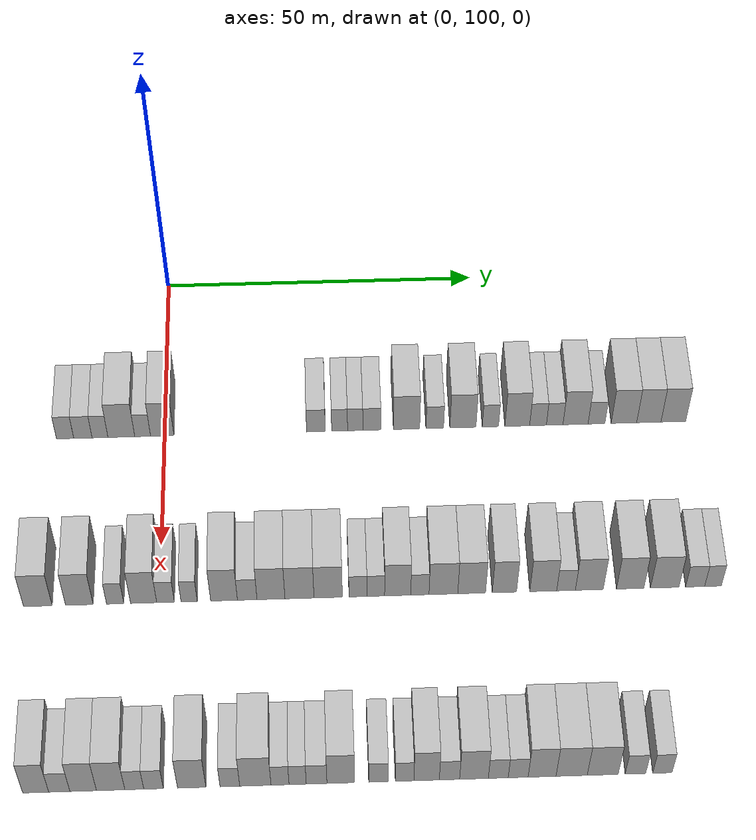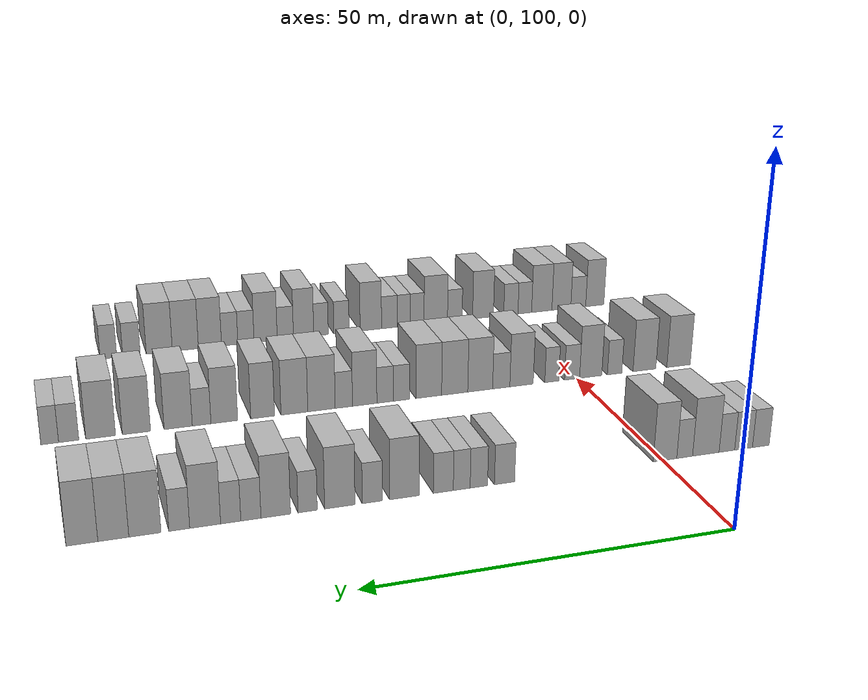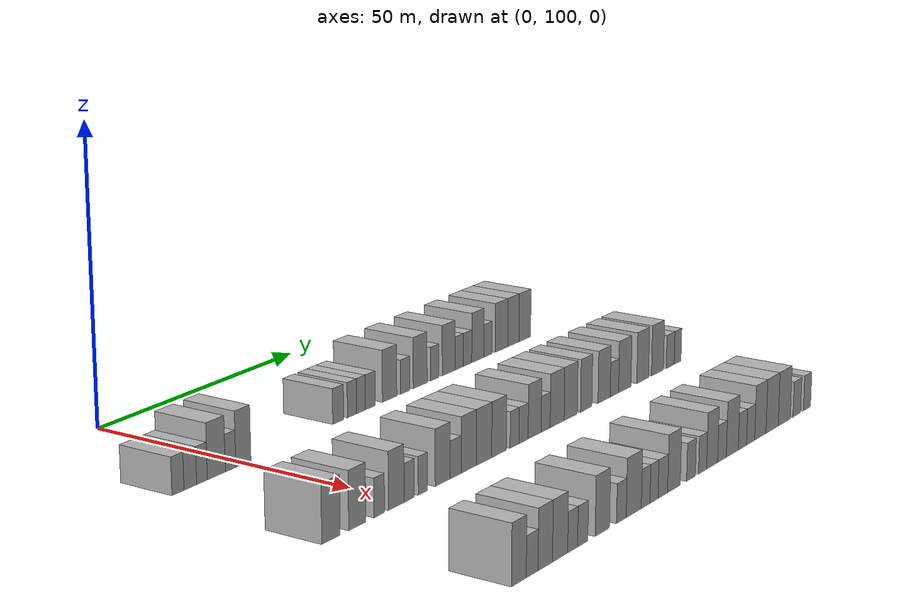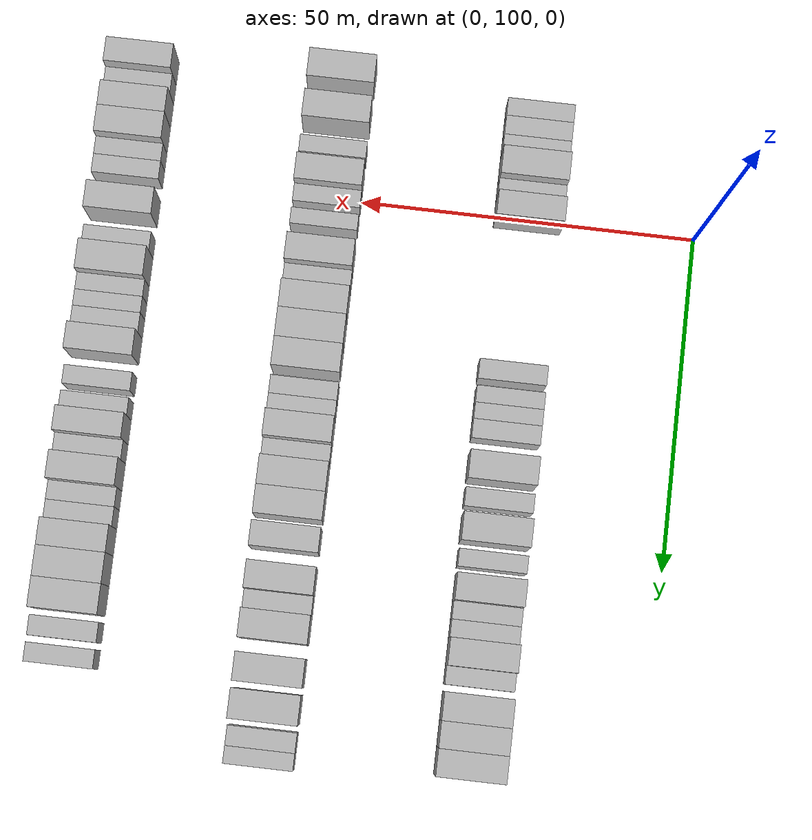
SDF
<sdf version="1.6">
 <world name="default">
  <model name="building_95">
   <static>1</static>
   <pose>25.0000 84.3382 0 0.000000 0.000000 0.000000</pose>
   <link name="link">
    <pose>0 0 3.00 0 0 0</pose>
    <collision name="collision"><geometry><box><size>10.0000 2.7156 6.0000</size></box></geometry></collision>
    <visual name="visual">
     <cast_shadows>0</cast_shadows>
     <geometry><box><size>10.0000 2.7156 6.0000</size></box></geometry>
     <material>
      <script>
       <uri>model://HANNAS_wall/materials/scripts</uri>
       <uri>model://HANNAS_wall/materials/textures</uri>
       <name>vrc/HANNAS_wall</name>
      </script>
     </material>
    </visual>
   </link>
  </model>
  <model name="building_96">
   <static>1</static>
   <pose>25.0000 87.1358 0 0.000000 0.000000 0.000000</pose>
   <link name="link">
    <pose>0 0 3.00 0 0 0</pose>
    <collision name="collision"><geometry><box><size>10.0000 2.8794 6.0000</size></box></geometry></collision>
    <visual name="visual">
     <cast_shadows>0</cast_shadows>
     <geometry><box><size>10.0000 2.8794 6.0000</size></box></geometry>
     <material>
      <script>
       <uri>model://HANNAS_wall/materials/scripts</uri>
       <uri>model://HANNAS_wall/materials/textures</uri>
       <name>vrc/HANNAS_wall</name>
      </script>
     </material>
    </visual>
   </link>
  </model>
  <model name="building_97">
   <static>1</static>
   <pose>25.0000 89.8253 0 0.000000 0.000000 0.000000</pose>
   <link name="link">
    <pose>0 0 3.00 0 0 0</pose>
    <collision name="collision"><geometry><box><size>10.0000 2.4997 6.0000</size></box></geometry></collision>
    <visual name="visual">
     <cast_shadows>0</cast_shadows>
     <geometry><box><size>10.0000 2.4997 6.0000</size></box></geometry>
     <material>
      <script>
       <uri>model://HANNAS_wall/materials/scripts</uri>
       <uri>model://HANNAS_wall/materials/textures</uri>
       <name>vrc/HANNAS_wall</name>
      </script>
     </material>
    </visual>
   </link>
  </model>
  <model name="building_98">
   <static>1</static>
   <pose>25.0000 93.1867 0 0.000000 0.000000 0.000000</pose>
   <link name="link">
    <pose>0 0 4.50 0 0 0</pose>
    <collision name="collision"><geometry><box><size>10.0000 4.2230 9.0000</size></box></geometry></collision>
    <visual name="visual">
     <cast_shadows>0</cast_shadows>
     <geometry><box><size>10.0000 4.2230 9.0000</size></box></geometry>
     <material>
      <script>
       <uri>model://HANNAS_wall/materials/scripts</uri>
       <uri>model://HANNAS_wall/materials/textures</uri>
       <name>vrc/HANNAS_wall</name>
      </script>
     </material>
    </visual>
   </link>
  </model>
  <model name="building_99">
   <static>1</static>
   <pose>25.0000 96.5442 0 0.000000 0.000000 0.000000</pose>
   <link name="link">
    <pose>0 0 3.00 0 0 0</pose>
    <collision name="collision"><geometry><box><size>10.0000 2.4920 6.0000</size></box></geometry></collision>
    <visual name="visual">
     <cast_shadows>0</cast_shadows>
     <geometry><box><size>10.0000 2.4920 6.0000</size></box></geometry>
     <material>
      <script>
       <uri>model://HANNAS_wall/materials/scripts</uri>
       <uri>model://HANNAS_wall/materials/textures</uri>
       <name>vrc/HANNAS_wall</name>
      </script>
     </material>
    </visual>
   </link>
  </model>
  <model name="building_100">
   <static>1</static>
   <pose>25.0000 99.6324 0 0.000000 0.000000 0.000000</pose>
   <link name="link">
    <pose>0 0 4.50 0 0 0</pose>
    <collision name="collision"><geometry><box><size>10.0000 3.6843 9.0000</size></box></geometry></collision>
    <visual name="visual">
     <cast_shadows>0</cast_shadows>
     <geometry><box><size>10.0000 3.6843 9.0000</size></box></geometry>
     <material>
      <script>
       <uri>model://HANNAS_wall/materials/scripts</uri>
       <uri>model://HANNAS_wall/materials/textures</uri>
       <name>vrc/HANNAS_wall</name>
      </script>
     </material>
    </visual>
   </link>
  </model>
  <model name="building_101">
   <static>1</static>
   <pose>25.0000 123.9019 0 0.000000 0.000000 0.000000</pose>
   <link name="link">
    <pose>0 0 3.00 0 0 0</pose>
    <collision name="collision"><geometry><box><size>10.0000 2.9516 6.0000</size></box></geometry></collision>
    <visual name="visual">
     <cast_shadows>0</cast_shadows>
     <geometry><box><size>10.0000 2.9516 6.0000</size></box></geometry>
     <material>
      <script>
       <uri>model://HANNAS_wall/materials/scripts</uri>
       <uri>model://HANNAS_wall/materials/textures</uri>
       <name>vrc/HANNAS_wall</name>
      </script>
     </material>
    </visual>
   </link>
  </model>
  <model name="building_102">
   <static>1</static>
   <pose>25.0000 127.6319 0 0.000000 0.000000 0.000000</pose>
   <link name="link">
    <pose>0 0 3.00 0 0 0</pose>
    <collision name="collision"><geometry><box><size>10.0000 2.5082 6.0000</size></box></geometry></collision>
    <visual name="visual">
     <cast_shadows>0</cast_shadows>
     <geometry><box><size>10.0000 2.5082 6.0000</size></box></geometry>
     <material>
      <script>
       <uri>model://HANNAS_wall/materials/scripts</uri>
       <uri>model://HANNAS_wall/materials/textures</uri>
       <name>vrc/HANNAS_wall</name>
      </script>
     </material>
    </visual>
   </link>
  </model>
  <model name="building_103">
   <static>1</static>
   <pose>25.0000 130.0934 0 0.000000 0.000000 0.000000</pose>
   <link name="link">
    <pose>0 0 3.00 0 0 0</pose>
    <collision name="collision"><geometry><box><size>10.0000 2.4148 6.0000</size></box></geometry></collision>
    <visual name="visual">
     <cast_shadows>0</cast_shadows>
     <geometry><box><size>10.0000 2.4148 6.0000</size></box></geometry>
     <material>
      <script>
       <uri>model://HANNAS_wall/materials/scripts</uri>
       <uri>model://HANNAS_wall/materials/textures</uri>
       <name>vrc/HANNAS_wall</name>
      </script>
     </material>
    </visual>
   </link>
  </model>
  <model name="building_104">
   <static>1</static>
   <pose>25.0000 132.7229 0 0.000000 0.000000 0.000000</pose>
   <link name="link">
    <pose>0 0 3.00 0 0 0</pose>
    <collision name="collision"><geometry><box><size>10.0000 2.8443 6.0000</size></box></geometry></collision>
    <visual name="visual">
     <cast_shadows>0</cast_shadows>
     <geometry><box><size>10.0000 2.8443 6.0000</size></box></geometry>
     <material>
      <script>
       <uri>model://HANNAS_wall/materials/scripts</uri>
       <uri>model://HANNAS_wall/materials/textures</uri>
       <name>vrc/HANNAS_wall</name>
      </script>
     </material>
    </visual>
   </link>
  </model>
  <model name="building_105">
   <static>1</static>
   <pose>25.0000 138.2189 0 0.000000 0.000000 0.000000</pose>
   <link name="link">
    <pose>0 0 4.50 0 0 0</pose>
    <collision name="collision"><geometry><box><size>10.0000 4.1476 9.0000</size></box></geometry></collision>
    <visual name="visual">
     <cast_shadows>0</cast_shadows>
     <geometry><box><size>10.0000 4.1476 9.0000</size></box></geometry>
     <material>
      <script>
       <uri>model://HANNAS_wall/materials/scripts</uri>
       <uri>model://HANNAS_wall/materials/textures</uri>
       <name>vrc/HANNAS_wall</name>
      </script>
     </material>
    </visual>
   </link>
  </model>
  <model name="building_106">
   <static>1</static>
   <pose>25.0000 142.6856 0 0.000000 0.000000 0.000000</pose>
   <link name="link">
    <pose>0 0 3.00 0 0 0</pose>
    <collision name="collision"><geometry><box><size>10.0000 2.7859 6.0000</size></box></geometry></collision>
    <visual name="visual">
     <cast_shadows>0</cast_shadows>
     <geometry><box><size>10.0000 2.7859 6.0000</size></box></geometry>
     <material>
      <script>
       <uri>model://HANNAS_wall/materials/scripts</uri>
       <uri>model://HANNAS_wall/materials/textures</uri>
       <name>vrc/HANNAS_wall</name>
      </script>
     </material>
    </visual>
   </link>
  </model>
  <model name="building_107">
   <static>1</static>
   <pose>25.0000 147.1460 0 0.000000 0.000000 0.000000</pose>
   <link name="link">
    <pose>0 0 4.50 0 0 0</pose>
    <collision name="collision"><geometry><box><size>10.0000 4.1347 9.0000</size></box></geometry></collision>
    <visual name="visual">
     <cast_shadows>0</cast_shadows>
     <geometry><box><size>10.0000 4.1347 9.0000</size></box></geometry>
     <material>
      <script>
       <uri>model://HANNAS_wall/materials/scripts</uri>
       <uri>model://HANNAS_wall/materials/textures</uri>
       <name>vrc/HANNAS_wall</name>
      </script>
     </material>
    </visual>
   </link>
  </model>
  <model name="building_108">
   <static>1</static>
   <pose>25.0000 151.5055 0 0.000000 0.000000 0.000000</pose>
   <link name="link">
    <pose>0 0 3.00 0 0 0</pose>
    <collision name="collision"><geometry><box><size>10.0000 2.5843 6.0000</size></box></geometry></collision>
    <visual name="visual">
     <cast_shadows>0</cast_shadows>
     <geometry><box><size>10.0000 2.5843 6.0000</size></box></geometry>
     <material>
      <script>
       <uri>model://HANNAS_wall/materials/scripts</uri>
       <uri>model://HANNAS_wall/materials/textures</uri>
       <name>vrc/HANNAS_wall</name>
      </script>
     </material>
    </visual>
   </link>
  </model>
  <model name="building_109">
   <static>1</static>
   <pose>25.0000 155.7648 0 0.000000 0.000000 0.000000</pose>
   <link name="link">
    <pose>0 0 4.50 0 0 0</pose>
    <collision name="collision"><geometry><box><size>10.0000 3.9345 9.0000</size></box></geometry></collision>
    <visual name="visual">
     <cast_shadows>0</cast_shadows>
     <geometry><box><size>10.0000 3.9345 9.0000</size></box></geometry>
     <material>
      <script>
       <uri>model://HANNAS_wall/materials/scripts</uri>
       <uri>model://HANNAS_wall/materials/textures</uri>
       <name>vrc/HANNAS_wall</name>
      </script>
     </material>
    </visual>
   </link>
  </model>
  <model name="building_110">
   <static>1</static>
   <pose>25.0000 159.0579 0 0.000000 0.000000 0.000000</pose>
   <link name="link">
    <pose>0 0 3.00 0 0 0</pose>
    <collision name="collision"><geometry><box><size>10.0000 2.6517 6.0000</size></box></geometry></collision>
    <visual name="visual">
     <cast_shadows>0</cast_shadows>
     <geometry><box><size>10.0000 2.6517 6.0000</size></box></geometry>
     <material>
      <script>
       <uri>model://HANNAS_wall/materials/scripts</uri>
       <uri>model://HANNAS_wall/materials/textures</uri>
       <name>vrc/HANNAS_wall</name>
      </script>
     </material>
    </visual>
   </link>
  </model>
  <model name="building_111">
   <static>1</static>
   <pose>25.0000 161.7019 0 0.000000 0.000000 0.000000</pose>
   <link name="link">
    <pose>0 0 3.00 0 0 0</pose>
    <collision name="collision"><geometry><box><size>10.0000 2.6363 6.0000</size></box></geometry></collision>
    <visual name="visual">
     <cast_shadows>0</cast_shadows>
     <geometry><box><size>10.0000 2.6363 6.0000</size></box></geometry>
     <material>
      <script>
       <uri>model://HANNAS_wall/materials/scripts</uri>
       <uri>model://HANNAS_wall/materials/textures</uri>
       <name>vrc/HANNAS_wall</name>
      </script>
     </material>
    </visual>
   </link>
  </model>
  <model name="building_112">
   <static>1</static>
   <pose>25.0000 165.0151 0 0.000000 0.000000 0.000000</pose>
   <link name="link">
    <pose>0 0 4.50 0 0 0</pose>
    <collision name="collision"><geometry><box><size>10.0000 3.9900 9.0000</size></box></geometry></collision>
    <visual name="visual">
     <cast_shadows>0</cast_shadows>
     <geometry><box><size>10.0000 3.9900 9.0000</size></box></geometry>
     <material>
      <script>
       <uri>model://HANNAS_wall/materials/scripts</uri>
       <uri>model://HANNAS_wall/materials/textures</uri>
       <name>vrc/HANNAS_wall</name>
      </script>
     </material>
    </visual>
   </link>
  </model>
  <model name="building_113">
   <static>1</static>
   <pose>25.0000 168.3456 0 0.000000 0.000000 0.000000</pose>
   <link name="link">
    <pose>0 0 3.00 0 0 0</pose>
    <collision name="collision"><geometry><box><size>10.0000 2.6710 6.0000</size></box></geometry></collision>
    <visual name="visual">
     <cast_shadows>0</cast_shadows>
     <geometry><box><size>10.0000 2.6710 6.0000</size></box></geometry>
     <material>
      <script>
       <uri>model://HANNAS_wall/materials/scripts</uri>
       <uri>model://HANNAS_wall/materials/textures</uri>
       <name>vrc/HANNAS_wall</name>
      </script>
     </material>
    </visual>
   </link>
  </model>
  <model name="building_114">
   <static>1</static>
   <pose>25.0000 172.7113 0 0.000000 0.000000 0.000000</pose>
   <link name="link">
    <pose>0 0 4.50 0 0 0</pose>
    <collision name="collision"><geometry><box><size>10.0000 4.0604 9.0000</size></box></geometry></collision>
    <visual name="visual">
     <cast_shadows>0</cast_shadows>
     <geometry><box><size>10.0000 4.0604 9.0000</size></box></geometry>
     <material>
      <script>
       <uri>model://HANNAS_wall/materials/scripts</uri>
       <uri>model://HANNAS_wall/materials/textures</uri>
       <name>vrc/HANNAS_wall</name>
      </script>
     </material>
    </visual>
   </link>
  </model>
  <model name="building_115">
   <static>1</static>
   <pose>25.0000 176.6737 0 0.000000 0.000000 0.000000</pose>
   <link name="link">
    <pose>0 0 4.50 0 0 0</pose>
    <collision name="collision"><geometry><box><size>10.0000 3.8644 9.0000</size></box></geometry></collision>
    <visual name="visual">
     <cast_shadows>0</cast_shadows>
     <geometry><box><size>10.0000 3.8644 9.0000</size></box></geometry>
     <material>
      <script>
       <uri>model://HANNAS_wall/materials/scripts</uri>
       <uri>model://HANNAS_wall/materials/textures</uri>
       <name>vrc/HANNAS_wall</name>
      </script>
     </material>
    </visual>
   </link>
  </model>
  <model name="building_116">
   <static>1</static>
   <pose>25.0000 180.5719 0 0.000000 0.000000 0.000000</pose>
   <link name="link">
    <pose>0 0 4.50 0 0 0</pose>
    <collision name="collision"><geometry><box><size>10.0000 3.9322 9.0000</size></box></geometry></collision>
    <visual name="visual">
     <cast_shadows>0</cast_shadows>
     <geometry><box><size>10.0000 3.9322 9.0000</size></box></geometry>
     <material>
      <script>
       <uri>model://HANNAS_wall/materials/scripts</uri>
       <uri>model://HANNAS_wall/materials/textures</uri>
       <name>vrc/HANNAS_wall</name>
      </script>
     </material>
    </visual>
   </link>
  </model>
  <model name="building_241">
   <static>1</static>
   <pose>55.0000 81.8180 0 0.000000 0.000000 0.000000</pose>
   <link name="link">
    <pose>0 0 4.50 0 0 0</pose>
    <collision name="collision"><geometry><box><size>10.0000 4.2729 9.0000</size></box></geometry></collision>
    <visual name="visual">
     <cast_shadows>0</cast_shadows>
     <geometry><box><size>10.0000 4.2729 9.0000</size></box></geometry>
     <material>
      <script>
       <uri>model://HANNAS_wall/materials/scripts</uri>
       <uri>model://HANNAS_wall/materials/textures</uri>
       <name>vrc/HANNAS_wall</name>
      </script>
     </material>
    </visual>
   </link>
  </model>
  <model name="building_242">
   <static>1</static>
   <pose>55.0000 88.0100 0 0.000000 0.000000 0.000000</pose>
   <link name="link">
    <pose>0 0 4.50 0 0 0</pose>
    <collision name="collision"><geometry><box><size>10.0000 4.1110 9.0000</size></box></geometry></collision>
    <visual name="visual">
     <cast_shadows>0</cast_shadows>
     <geometry><box><size>10.0000 4.1110 9.0000</size></box></geometry>
     <material>
      <script>
       <uri>model://HANNAS_wall/materials/scripts</uri>
       <uri>model://HANNAS_wall/materials/textures</uri>
       <name>vrc/HANNAS_wall</name>
      </script>
     </material>
    </visual>
   </link>
  </model>
  <model name="building_243">
   <static>1</static>
   <pose>55.0000 93.3523 0 0.000000 0.000000 0.000000</pose>
   <link name="link">
    <pose>0 0 3.00 0 0 0</pose>
    <collision name="collision"><geometry><box><size>10.0000 2.5737 6.0000</size></box></geometry></collision>
    <visual name="visual">
     <cast_shadows>0</cast_shadows>
     <geometry><box><size>10.0000 2.5737 6.0000</size></box></geometry>
     <material>
      <script>
       <uri>model://HANNAS_wall/materials/scripts</uri>
       <uri>model://HANNAS_wall/materials/textures</uri>
       <name>vrc/HANNAS_wall</name>
      </script>
     </material>
    </visual>
   </link>
  </model>
  <model name="building_244">
   <static>1</static>
   <pose>55.0000 97.5940 0 0.000000 0.000000 0.000000</pose>
   <link name="link">
    <pose>0 0 4.50 0 0 0</pose>
    <collision name="collision"><geometry><box><size>10.0000 3.9098 9.0000</size></box></geometry></collision>
    <visual name="visual">
     <cast_shadows>0</cast_shadows>
     <geometry><box><size>10.0000 3.9098 9.0000</size></box></geometry>
     <material>
      <script>
       <uri>model://HANNAS_wall/materials/scripts</uri>
       <uri>model://HANNAS_wall/materials/textures</uri>
       <name>vrc/HANNAS_wall</name>
      </script>
     </material>
    </visual>
   </link>
  </model>
  <model name="building_245">
   <static>1</static>
   <pose>55.0000 100.8667 0 0.000000 0.000000 0.000000</pose>
   <link name="link">
    <pose>0 0 3.00 0 0 0</pose>
    <collision name="collision"><geometry><box><size>10.0000 2.6355 6.0000</size></box></geometry></collision>
    <visual name="visual">
     <cast_shadows>0</cast_shadows>
     <geometry><box><size>10.0000 2.6355 6.0000</size></box></geometry>
     <material>
      <script>
       <uri>model://HANNAS_wall/materials/scripts</uri>
       <uri>model://HANNAS_wall/materials/textures</uri>
       <name>vrc/HANNAS_wall</name>
      </script>
     </material>
    </visual>
   </link>
  </model>
  <model name="building_246">
   <static>1</static>
   <pose>55.0000 104.3958 0 0.000000 0.000000 0.000000</pose>
   <link name="link">
    <pose>0 0 3.00 0 0 0</pose>
    <collision name="collision"><geometry><box><size>10.0000 2.4227 6.0000</size></box></geometry></collision>
    <visual name="visual">
     <cast_shadows>0</cast_shadows>
     <geometry><box><size>10.0000 2.4227 6.0000</size></box></geometry>
     <material>
      <script>
       <uri>model://HANNAS_wall/materials/scripts</uri>
       <uri>model://HANNAS_wall/materials/textures</uri>
       <name>vrc/HANNAS_wall</name>
      </script>
     </material>
    </visual>
   </link>
  </model>
  <model name="building_247">
   <static>1</static>
   <pose>55.0000 109.6061 0 0.000000 0.000000 0.000000</pose>
   <link name="link">
    <pose>0 0 4.50 0 0 0</pose>
    <collision name="collision"><geometry><box><size>10.0000 3.9979 9.0000</size></box></geometry></collision>
    <visual name="visual">
     <cast_shadows>0</cast_shadows>
     <geometry><box><size>10.0000 3.9979 9.0000</size></box></geometry>
     <material>
      <script>
       <uri>model://HANNAS_wall/materials/scripts</uri>
       <uri>model://HANNAS_wall/materials/textures</uri>
       <name>vrc/HANNAS_wall</name>
      </script>
     </material>
    </visual>
   </link>
  </model>
  <model name="building_248">
   <static>1</static>
   <pose>55.0000 113.0650 0 0.000000 0.000000 0.000000</pose>
   <link name="link">
    <pose>0 0 3.00 0 0 0</pose>
    <collision name="collision"><geometry><box><size>10.0000 2.9199 6.0000</size></box></geometry></collision>
    <visual name="visual">
     <cast_shadows>0</cast_shadows>
     <geometry><box><size>10.0000 2.9199 6.0000</size></box></geometry>
     <material>
      <script>
       <uri>model://HANNAS_wall/materials/scripts</uri>
       <uri>model://HANNAS_wall/materials/textures</uri>
       <name>vrc/HANNAS_wall</name>
      </script>
     </material>
    </visual>
   </link>
  </model>
  <model name="building_249">
   <static>1</static>
   <pose>55.0000 116.6183 0 0.000000 0.000000 0.000000</pose>
   <link name="link">
    <pose>0 0 4.50 0 0 0</pose>
    <collision name="collision"><geometry><box><size>10.0000 4.1867 9.0000</size></box></geometry></collision>
    <visual name="visual">
     <cast_shadows>0</cast_shadows>
     <geometry><box><size>10.0000 4.1867 9.0000</size></box></geometry>
     <material>
      <script>
       <uri>model://HANNAS_wall/materials/scripts</uri>
       <uri>model://HANNAS_wall/materials/textures</uri>
       <name>vrc/HANNAS_wall</name>
      </script>
     </material>
    </visual>
   </link>
  </model>
  <model name="building_250">
   <static>1</static>
   <pose>55.0000 120.8841 0 0.000000 0.000000 0.000000</pose>
   <link name="link">
    <pose>0 0 4.50 0 0 0</pose>
    <collision name="collision"><geometry><box><size>10.0000 4.3450 9.0000</size></box></geometry></collision>
    <visual name="visual">
     <cast_shadows>0</cast_shadows>
     <geometry><box><size>10.0000 4.3450 9.0000</size></box></geometry>
     <material>
      <script>
       <uri>model://HANNAS_wall/materials/scripts</uri>
       <uri>model://HANNAS_wall/materials/textures</uri>
       <name>vrc/HANNAS_wall</name>
      </script>
     </material>
    </visual>
   </link>
  </model>
  <model name="building_251">
   <static>1</static>
   <pose>55.0000 125.1800 0 0.000000 0.000000 0.000000</pose>
   <link name="link">
    <pose>0 0 4.50 0 0 0</pose>
    <collision name="collision"><geometry><box><size>10.0000 4.2468 9.0000</size></box></geometry></collision>
    <visual name="visual">
     <cast_shadows>0</cast_shadows>
     <geometry><box><size>10.0000 4.2468 9.0000</size></box></geometry>
     <material>
      <script>
       <uri>model://HANNAS_wall/materials/scripts</uri>
       <uri>model://HANNAS_wall/materials/textures</uri>
       <name>vrc/HANNAS_wall</name>
      </script>
     </material>
    </visual>
   </link>
  </model>
  <model name="building_252">
   <static>1</static>
   <pose>55.0000 129.6509 0 0.000000 0.000000 0.000000</pose>
   <link name="link">
    <pose>0 0 3.00 0 0 0</pose>
    <collision name="collision"><geometry><box><size>10.0000 2.6948 6.0000</size></box></geometry></collision>
    <visual name="visual">
     <cast_shadows>0</cast_shadows>
     <geometry><box><size>10.0000 2.6948 6.0000</size></box></geometry>
     <material>
      <script>
       <uri>model://HANNAS_wall/materials/scripts</uri>
       <uri>model://HANNAS_wall/materials/textures</uri>
       <name>vrc/HANNAS_wall</name>
      </script>
     </material>
    </visual>
   </link>
  </model>
  <model name="building_253">
   <static>1</static>
   <pose>55.0000 132.3142 0 0.000000 0.000000 0.000000</pose>
   <link name="link">
    <pose>0 0 3.00 0 0 0</pose>
    <collision name="collision"><geometry><box><size>10.0000 2.6318 6.0000</size></box></geometry></collision>
    <visual name="visual">
     <cast_shadows>0</cast_shadows>
     <geometry><box><size>10.0000 2.6318 6.0000</size></box></geometry>
     <material>
      <script>
       <uri>model://HANNAS_wall/materials/scripts</uri>
       <uri>model://HANNAS_wall/materials/textures</uri>
       <name>vrc/HANNAS_wall</name>
      </script>
     </material>
    </visual>
   </link>
  </model>
  <model name="building_254">
   <static>1</static>
   <pose>55.0000 135.5889 0 0.000000 0.000000 0.000000</pose>
   <link name="link">
    <pose>0 0 4.50 0 0 0</pose>
    <collision name="collision"><geometry><box><size>10.0000 3.9175 9.0000</size></box></geometry></collision>
    <visual name="visual">
     <cast_shadows>0</cast_shadows>
     <geometry><box><size>10.0000 3.9175 9.0000</size></box></geometry>
     <material>
      <script>
       <uri>model://HANNAS_wall/materials/scripts</uri>
       <uri>model://HANNAS_wall/materials/textures</uri>
       <name>vrc/HANNAS_wall</name>
      </script>
     </material>
    </visual>
   </link>
  </model>
  <model name="building_255">
   <static>1</static>
   <pose>55.0000 138.9172 0 0.000000 0.000000 0.000000</pose>
   <link name="link">
    <pose>0 0 3.00 0 0 0</pose>
    <collision name="collision"><geometry><box><size>10.0000 2.7392 6.0000</size></box></geometry></collision>
    <visual name="visual">
     <cast_shadows>0</cast_shadows>
     <geometry><box><size>10.0000 2.7392 6.0000</size></box></geometry>
     <material>
      <script>
       <uri>model://HANNAS_wall/materials/scripts</uri>
       <uri>model://HANNAS_wall/materials/textures</uri>
       <name>vrc/HANNAS_wall</name>
      </script>
     </material>
    </visual>
   </link>
  </model>
  <model name="building_256">
   <static>1</static>
   <pose>55.0000 142.4449 0 0.000000 0.000000 0.000000</pose>
   <link name="link">
    <pose>0 0 4.50 0 0 0</pose>
    <collision name="collision"><geometry><box><size>10.0000 4.3160 9.0000</size></box></geometry></collision>
    <visual name="visual">
     <cast_shadows>0</cast_shadows>
     <geometry><box><size>10.0000 4.3160 9.0000</size></box></geometry>
     <material>
      <script>
       <uri>model://HANNAS_wall/materials/scripts</uri>
       <uri>model://HANNAS_wall/materials/textures</uri>
       <name>vrc/HANNAS_wall</name>
      </script>
     </material>
    </visual>
   </link>
  </model>
  <model name="building_257">
   <static>1</static>
   <pose>55.0000 146.6888 0 0.000000 0.000000 0.000000</pose>
   <link name="link">
    <pose>0 0 4.50 0 0 0</pose>
    <collision name="collision"><geometry><box><size>10.0000 4.1719 9.0000</size></box></geometry></collision>
    <visual name="visual">
     <cast_shadows>0</cast_shadows>
     <geometry><box><size>10.0000 4.1719 9.0000</size></box></geometry>
     <material>
      <script>
       <uri>model://HANNAS_wall/materials/scripts</uri>
       <uri>model://HANNAS_wall/materials/textures</uri>
       <name>vrc/HANNAS_wall</name>
      </script>
     </material>
    </visual>
   </link>
  </model>
  <model name="building_258">
   <static>1</static>
   <pose>55.0000 151.6006 0 0.000000 0.000000 0.000000</pose>
   <link name="link">
    <pose>0 0 4.50 0 0 0</pose>
    <collision name="collision"><geometry><box><size>10.0000 3.6516 9.0000</size></box></geometry></collision>
    <visual name="visual">
     <cast_shadows>0</cast_shadows>
     <geometry><box><size>10.0000 3.6516 9.0000</size></box></geometry>
     <material>
      <script>
       <uri>model://HANNAS_wall/materials/scripts</uri>
       <uri>model://HANNAS_wall/materials/textures</uri>
       <name>vrc/HANNAS_wall</name>
      </script>
     </material>
    </visual>
   </link>
  </model>
  <model name="building_259">
   <static>1</static>
   <pose>55.0000 157.4501 0 0.000000 0.000000 0.000000</pose>
   <link name="link">
    <pose>0 0 4.50 0 0 0</pose>
    <collision name="collision"><geometry><box><size>10.0000 4.0475 9.0000</size></box></geometry></collision>
    <visual name="visual">
     <cast_shadows>0</cast_shadows>
     <geometry><box><size>10.0000 4.0475 9.0000</size></box></geometry>
     <material>
      <script>
       <uri>model://HANNAS_wall/materials/scripts</uri>
       <uri>model://HANNAS_wall/materials/textures</uri>
       <name>vrc/HANNAS_wall</name>
      </script>
     </material>
    </visual>
   </link>
  </model>
  <model name="building_260">
   <static>1</static>
   <pose>55.0000 160.8755 0 0.000000 0.000000 0.000000</pose>
   <link name="link">
    <pose>0 0 3.00 0 0 0</pose>
    <collision name="collision"><geometry><box><size>10.0000 2.8033 6.0000</size></box></geometry></collision>
    <visual name="visual">
     <cast_shadows>0</cast_shadows>
     <geometry><box><size>10.0000 2.8033 6.0000</size></box></geometry>
     <material>
      <script>
       <uri>model://HANNAS_wall/materials/scripts</uri>
       <uri>model://HANNAS_wall/materials/textures</uri>
       <name>vrc/HANNAS_wall</name>
      </script>
     </material>
    </visual>
   </link>
  </model>
  <model name="building_261">
   <static>1</static>
   <pose>55.0000 164.3743 0 0.000000 0.000000 0.000000</pose>
   <link name="link">
    <pose>0 0 4.50 0 0 0</pose>
    <collision name="collision"><geometry><box><size>10.0000 4.1942 9.0000</size></box></geometry></collision>
    <visual name="visual">
     <cast_shadows>0</cast_shadows>
     <geometry><box><size>10.0000 4.1942 9.0000</size></box></geometry>
     <material>
      <script>
       <uri>model://HANNAS_wall/materials/scripts</uri>
       <uri>model://HANNAS_wall/materials/textures</uri>
       <name>vrc/HANNAS_wall</name>
      </script>
     </material>
    </visual>
   </link>
  </model>
  <model name="building_262">
   <static>1</static>
   <pose>55.0000 170.5311 0 0.000000 0.000000 0.000000</pose>
   <link name="link">
    <pose>0 0 4.50 0 0 0</pose>
    <collision name="collision"><geometry><box><size>10.0000 4.1194 9.0000</size></box></geometry></collision>
    <visual name="visual">
     <cast_shadows>0</cast_shadows>
     <geometry><box><size>10.0000 4.1194 9.0000</size></box></geometry>
     <material>
      <script>
       <uri>model://HANNAS_wall/materials/scripts</uri>
       <uri>model://HANNAS_wall/materials/textures</uri>
       <name>vrc/HANNAS_wall</name>
      </script>
     </material>
    </visual>
   </link>
  </model>
  <model name="building_263">
   <static>1</static>
   <pose>55.0000 175.7371 0 0.000000 0.000000 0.000000</pose>
   <link name="link">
    <pose>0 0 4.50 0 0 0</pose>
    <collision name="collision"><geometry><box><size>10.0000 4.2924 9.0000</size></box></geometry></collision>
    <visual name="visual">
     <cast_shadows>0</cast_shadows>
     <geometry><box><size>10.0000 4.2924 9.0000</size></box></geometry>
     <material>
      <script>
       <uri>model://HANNAS_wall/materials/scripts</uri>
       <uri>model://HANNAS_wall/materials/textures</uri>
       <name>vrc/HANNAS_wall</name>
      </script>
     </material>
    </visual>
   </link>
  </model>
  <model name="building_264">
   <static>1</static>
   <pose>55.0000 180.3242 0 0.000000 0.000000 0.000000</pose>
   <link name="link">
    <pose>0 0 3.00 0 0 0</pose>
    <collision name="collision"><geometry><box><size>10.0000 2.8818 6.0000</size></box></geometry></collision>
    <visual name="visual">
     <cast_shadows>0</cast_shadows>
     <geometry><box><size>10.0000 2.8818 6.0000</size></box></geometry>
     <material>
      <script>
       <uri>model://HANNAS_wall/materials/scripts</uri>
       <uri>model://HANNAS_wall/materials/textures</uri>
       <name>vrc/HANNAS_wall</name>
      </script>
     </material>
    </visual>
   </link>
  </model>
  <model name="building_265">
   <static>1</static>
   <pose>55.0000 183.0226 0 0.000000 0.000000 0.000000</pose>
   <link name="link">
    <pose>0 0 3.00 0 0 0</pose>
    <collision name="collision"><geometry><box><size>10.0000 2.5150 6.0000</size></box></geometry></collision>
    <visual name="visual">
     <cast_shadows>0</cast_shadows>
     <geometry><box><size>10.0000 2.5150 6.0000</size></box></geometry>
     <material>
      <script>
       <uri>model://HANNAS_wall/materials/scripts</uri>
       <uri>model://HANNAS_wall/materials/textures</uri>
       <name>vrc/HANNAS_wall</name>
      </script>
     </material>
    </visual>
   </link>
  </model>
  <model name="building_384">
   <static>1</static>
   <pose>85.0000 83.2933 0 0.000000 0.000000 0.000000</pose>
   <link name="link">
    <pose>0 0 4.50 0 0 0</pose>
    <collision name="collision"><geometry><box><size>10.0000 3.6503 9.0000</size></box></geometry></collision>
    <visual name="visual">
     <cast_shadows>0</cast_shadows>
     <geometry><box><size>10.0000 3.6503 9.0000</size></box></geometry>
     <material>
      <script>
       <uri>model://HANNAS_wall/materials/scripts</uri>
       <uri>model://HANNAS_wall/materials/textures</uri>
       <name>vrc/HANNAS_wall</name>
      </script>
     </material>
    </visual>
   </link>
  </model>
  <model name="building_385">
   <static>1</static>
   <pose>85.0000 86.6106 0 0.000000 0.000000 0.000000</pose>
   <link name="link">
    <pose>0 0 3.00 0 0 0</pose>
    <collision name="collision"><geometry><box><size>10.0000 2.9843 6.0000</size></box></geometry></collision>
    <visual name="visual">
     <cast_shadows>0</cast_shadows>
     <geometry><box><size>10.0000 2.9843 6.0000</size></box></geometry>
     <material>
      <script>
       <uri>model://HANNAS_wall/materials/scripts</uri>
       <uri>model://HANNAS_wall/materials/textures</uri>
       <name>vrc/HANNAS_wall</name>
      </script>
     </material>
    </visual>
   </link>
  </model>
  <model name="building_386">
   <static>1</static>
   <pose>85.0000 89.9734 0 0.000000 0.000000 0.000000</pose>
   <link name="link">
    <pose>0 0 4.50 0 0 0</pose>
    <collision name="collision"><geometry><box><size>10.0000 3.7413 9.0000</size></box></geometry></collision>
    <visual name="visual">
     <cast_shadows>0</cast_shadows>
     <geometry><box><size>10.0000 3.7413 9.0000</size></box></geometry>
     <material>
      <script>
       <uri>model://HANNAS_wall/materials/scripts</uri>
       <uri>model://HANNAS_wall/materials/textures</uri>
       <name>vrc/HANNAS_wall</name>
      </script>
     </material>
    </visual>
   </link>
  </model>
  <model name="building_387">
   <static>1</static>
   <pose>85.0000 93.8416 0 0.000000 0.000000 0.000000</pose>
   <link name="link">
    <pose>0 0 4.50 0 0 0</pose>
    <collision name="collision"><geometry><box><size>10.0000 3.9952 9.0000</size></box></geometry></collision>
    <visual name="visual">
     <cast_shadows>0</cast_shadows>
     <geometry><box><size>10.0000 3.9952 9.0000</size></box></geometry>
     <material>
      <script>
       <uri>model://HANNAS_wall/materials/scripts</uri>
       <uri>model://HANNAS_wall/materials/textures</uri>
       <name>vrc/HANNAS_wall</name>
      </script>
     </material>
    </visual>
   </link>
  </model>
  <model name="building_388">
   <static>1</static>
   <pose>85.0000 97.1737 0 0.000000 0.000000 0.000000</pose>
   <link name="link">
    <pose>0 0 3.00 0 0 0</pose>
    <collision name="collision"><geometry><box><size>10.0000 2.6690 6.0000</size></box></geometry></collision>
    <visual name="visual">
     <cast_shadows>0</cast_shadows>
     <geometry><box><size>10.0000 2.6690 6.0000</size></box></geometry>
     <material>
      <script>
       <uri>model://HANNAS_wall/materials/scripts</uri>
       <uri>model://HANNAS_wall/materials/textures</uri>
       <name>vrc/HANNAS_wall</name>
      </script>
     </material>
    </visual>
   </link>
  </model>
  <model name="building_389">
   <static>1</static>
   <pose>85.0000 99.8896 0 0.000000 0.000000 0.000000</pose>
   <link name="link">
    <pose>0 0 3.00 0 0 0</pose>
    <collision name="collision"><geometry><box><size>10.0000 2.7628 6.0000</size></box></geometry></collision>
    <visual name="visual">
     <cast_shadows>0</cast_shadows>
     <geometry><box><size>10.0000 2.7628 6.0000</size></box></geometry>
     <material>
      <script>
       <uri>model://HANNAS_wall/materials/scripts</uri>
       <uri>model://HANNAS_wall/materials/textures</uri>
       <name>vrc/HANNAS_wall</name>
      </script>
     </material>
    </visual>
   </link>
  </model>
  <model name="building_390">
   <static>1</static>
   <pose>85.0000 105.2699 0 0.000000 0.000000 0.000000</pose>
   <link name="link">
    <pose>0 0 4.50 0 0 0</pose>
    <collision name="collision"><geometry><box><size>10.0000 3.9977 9.0000</size></box></geometry></collision>
    <visual name="visual">
     <cast_shadows>0</cast_shadows>
     <geometry><box><size>10.0000 3.9977 9.0000</size></box></geometry>
     <material>
      <script>
       <uri>model://HANNAS_wall/materials/scripts</uri>
       <uri>model://HANNAS_wall/materials/textures</uri>
       <name>vrc/HANNAS_wall</name>
      </script>
     </material>
    </visual>
   </link>
  </model>
  <model name="building_391">
   <static>1</static>
   <pose>85.0000 110.6560 0 0.000000 0.000000 0.000000</pose>
   <link name="link">
    <pose>0 0 3.00 0 0 0</pose>
    <collision name="collision"><geometry><box><size>10.0000 2.7746 6.0000</size></box></geometry></collision>
    <visual name="visual">
     <cast_shadows>0</cast_shadows>
     <geometry><box><size>10.0000 2.7746 6.0000</size></box></geometry>
     <material>
      <script>
       <uri>model://HANNAS_wall/materials/scripts</uri>
       <uri>model://HANNAS_wall/materials/textures</uri>
       <name>vrc/HANNAS_wall</name>
      </script>
     </material>
    </visual>
   </link>
  </model>
  <model name="building_392">
   <static>1</static>
   <pose>85.0000 114.2523 0 0.000000 0.000000 0.000000</pose>
   <link name="link">
    <pose>0 0 4.50 0 0 0</pose>
    <collision name="collision"><geometry><box><size>10.0000 4.4178 9.0000</size></box></geometry></collision>
    <visual name="visual">
     <cast_shadows>0</cast_shadows>
     <geometry><box><size>10.0000 4.4178 9.0000</size></box></geometry>
     <material>
      <script>
       <uri>model://HANNAS_wall/materials/scripts</uri>
       <uri>model://HANNAS_wall/materials/textures</uri>
       <name>vrc/HANNAS_wall</name>
      </script>
     </material>
    </visual>
   </link>
  </model>
  <model name="building_393">
   <static>1</static>
   <pose>85.0000 117.7368 0 0.000000 0.000000 0.000000</pose>
   <link name="link">
    <pose>0 0 3.00 0 0 0</pose>
    <collision name="collision"><geometry><box><size>10.0000 2.5512 6.0000</size></box></geometry></collision>
    <visual name="visual">
     <cast_shadows>0</cast_shadows>
     <geometry><box><size>10.0000 2.5512 6.0000</size></box></geometry>
     <material>
      <script>
       <uri>model://HANNAS_wall/materials/scripts</uri>
       <uri>model://HANNAS_wall/materials/textures</uri>
       <name>vrc/HANNAS_wall</name>
      </script>
     </material>
    </visual>
   </link>
  </model>
  <model name="building_394">
   <static>1</static>
   <pose>85.0000 120.2261 0 0.000000 0.000000 0.000000</pose>
   <link name="link">
    <pose>0 0 3.00 0 0 0</pose>
    <collision name="collision"><geometry><box><size>10.0000 2.4274 6.0000</size></box></geometry></collision>
    <visual name="visual">
     <cast_shadows>0</cast_shadows>
     <geometry><box><size>10.0000 2.4274 6.0000</size></box></geometry>
     <material>
      <script>
       <uri>model://HANNAS_wall/materials/scripts</uri>
       <uri>model://HANNAS_wall/materials/textures</uri>
       <name>vrc/HANNAS_wall</name>
      </script>
     </material>
    </visual>
   </link>
  </model>
  <model name="building_395">
   <static>1</static>
   <pose>85.0000 122.9013 0 0.000000 0.000000 0.000000</pose>
   <link name="link">
    <pose>0 0 3.00 0 0 0</pose>
    <collision name="collision"><geometry><box><size>10.0000 2.9232 6.0000</size></box></geometry></collision>
    <visual name="visual">
     <cast_shadows>0</cast_shadows>
     <geometry><box><size>10.0000 2.9232 6.0000</size></box></geometry>
     <material>
      <script>
       <uri>model://HANNAS_wall/materials/scripts</uri>
       <uri>model://HANNAS_wall/materials/textures</uri>
       <name>vrc/HANNAS_wall</name>
      </script>
     </material>
    </visual>
   </link>
  </model>
  <model name="building_396">
   <static>1</static>
   <pose>85.0000 126.3197 0 0.000000 0.000000 0.000000</pose>
   <link name="link">
    <pose>0 0 4.50 0 0 0</pose>
    <collision name="collision"><geometry><box><size>10.0000 3.9135 9.0000</size></box></geometry></collision>
    <visual name="visual">
     <cast_shadows>0</cast_shadows>
     <geometry><box><size>10.0000 3.9135 9.0000</size></box></geometry>
     <material>
      <script>
       <uri>model://HANNAS_wall/materials/scripts</uri>
       <uri>model://HANNAS_wall/materials/textures</uri>
       <name>vrc/HANNAS_wall</name>
      </script>
     </material>
    </visual>
   </link>
  </model>
  <model name="building_397">
   <static>1</static>
   <pose>85.0000 131.6601 0 0.000000 0.000000 0.000000</pose>
   <link name="link">
    <pose>0 0 3.00 0 0 0</pose>
    <collision name="collision"><geometry><box><size>10.0000 2.7673 6.0000</size></box></geometry></collision>
    <visual name="visual">
     <cast_shadows>0</cast_shadows>
     <geometry><box><size>10.0000 2.7673 6.0000</size></box></geometry>
     <material>
      <script>
       <uri>model://HANNAS_wall/materials/scripts</uri>
       <uri>model://HANNAS_wall/materials/textures</uri>
       <name>vrc/HANNAS_wall</name>
      </script>
     </material>
    </visual>
   </link>
  </model>
  <model name="building_398">
   <static>1</static>
   <pose>85.0000 135.3511 0 0.000000 0.000000 0.000000</pose>
   <link name="link">
    <pose>0 0 3.00 0 0 0</pose>
    <collision name="collision"><geometry><box><size>10.0000 2.6148 6.0000</size></box></geometry></collision>
    <visual name="visual">
     <cast_shadows>0</cast_shadows>
     <geometry><box><size>10.0000 2.6148 6.0000</size></box></geometry>
     <material>
      <script>
       <uri>model://HANNAS_wall/materials/scripts</uri>
       <uri>model://HANNAS_wall/materials/textures</uri>
       <name>vrc/HANNAS_wall</name>
      </script>
     </material>
    </visual>
   </link>
  </model>
  <model name="building_399">
   <static>1</static>
   <pose>85.0000 138.4629 0 0.000000 0.000000 0.000000</pose>
   <link name="link">
    <pose>0 0 4.50 0 0 0</pose>
    <collision name="collision"><geometry><box><size>10.0000 3.6087 9.0000</size></box></geometry></collision>
    <visual name="visual">
     <cast_shadows>0</cast_shadows>
     <geometry><box><size>10.0000 3.6087 9.0000</size></box></geometry>
     <material>
      <script>
       <uri>model://HANNAS_wall/materials/scripts</uri>
       <uri>model://HANNAS_wall/materials/textures</uri>
       <name>vrc/HANNAS_wall</name>
      </script>
     </material>
    </visual>
   </link>
  </model>
  <model name="building_400">
   <static>1</static>
   <pose>85.0000 141.7029 0 0.000000 0.000000 0.000000</pose>
   <link name="link">
    <pose>0 0 3.00 0 0 0</pose>
    <collision name="collision"><geometry><box><size>10.0000 2.8713 6.0000</size></box></geometry></collision>
    <visual name="visual">
     <cast_shadows>0</cast_shadows>
     <geometry><box><size>10.0000 2.8713 6.0000</size></box></geometry>
     <material>
      <script>
       <uri>model://HANNAS_wall/materials/scripts</uri>
       <uri>model://HANNAS_wall/materials/textures</uri>
       <name>vrc/HANNAS_wall</name>
      </script>
     </material>
    </visual>
   </link>
  </model>
  <model name="building_401">
   <static>1</static>
   <pose>85.0000 145.1730 0 0.000000 0.000000 0.000000</pose>
   <link name="link">
    <pose>0 0 4.50 0 0 0</pose>
    <collision name="collision"><geometry><box><size>10.0000 4.0688 9.0000</size></box></geometry></collision>
    <visual name="visual">
     <cast_shadows>0</cast_shadows>
     <geometry><box><size>10.0000 4.0688 9.0000</size></box></geometry>
     <material>
      <script>
       <uri>model://HANNAS_wall/materials/scripts</uri>
       <uri>model://HANNAS_wall/materials/textures</uri>
       <name>vrc/HANNAS_wall</name>
      </script>
     </material>
    </visual>
   </link>
  </model>
  <model name="building_402">
   <static>1</static>
   <pose>85.0000 148.6194 0 0.000000 0.000000 0.000000</pose>
   <link name="link">
    <pose>0 0 3.00 0 0 0</pose>
    <collision name="collision"><geometry><box><size>10.0000 2.8241 6.0000</size></box></geometry></collision>
    <visual name="visual">
     <cast_shadows>0</cast_shadows>
     <geometry><box><size>10.0000 2.8241 6.0000</size></box></geometry>
     <material>
      <script>
       <uri>model://HANNAS_wall/materials/scripts</uri>
       <uri>model://HANNAS_wall/materials/textures</uri>
       <name>vrc/HANNAS_wall</name>
      </script>
     </material>
    </visual>
   </link>
  </model>
  <model name="building_403">
   <static>1</static>
   <pose>85.0000 151.4437 0 0.000000 0.000000 0.000000</pose>
   <link name="link">
    <pose>0 0 3.00 0 0 0</pose>
    <collision name="collision"><geometry><box><size>10.0000 2.8245 6.0000</size></box></geometry></collision>
    <visual name="visual">
     <cast_shadows>0</cast_shadows>
     <geometry><box><size>10.0000 2.8245 6.0000</size></box></geometry>
     <material>
      <script>
       <uri>model://HANNAS_wall/materials/scripts</uri>
       <uri>model://HANNAS_wall/materials/textures</uri>
       <name>vrc/HANNAS_wall</name>
      </script>
     </material>
    </visual>
   </link>
  </model>
  <model name="building_404">
   <static>1</static>
   <pose>85.0000 154.8389 0 0.000000 0.000000 0.000000</pose>
   <link name="link">
    <pose>0 0 4.50 0 0 0</pose>
    <collision name="collision"><geometry><box><size>10.0000 3.9659 9.0000</size></box></geometry></collision>
    <visual name="visual">
     <cast_shadows>0</cast_shadows>
     <geometry><box><size>10.0000 3.9659 9.0000</size></box></geometry>
     <material>
      <script>
       <uri>model://HANNAS_wall/materials/scripts</uri>
       <uri>model://HANNAS_wall/materials/textures</uri>
       <name>vrc/HANNAS_wall</name>
      </script>
     </material>
    </visual>
   </link>
  </model>
  <model name="building_405">
   <static>1</static>
   <pose>85.0000 159.0388 0 0.000000 0.000000 0.000000</pose>
   <link name="link">
    <pose>0 0 4.50 0 0 0</pose>
    <collision name="collision"><geometry><box><size>10.0000 4.4339 9.0000</size></box></geometry></collision>
    <visual name="visual">
     <cast_shadows>0</cast_shadows>
     <geometry><box><size>10.0000 4.4339 9.0000</size></box></geometry>
     <material>
      <script>
       <uri>model://HANNAS_wall/materials/scripts</uri>
       <uri>model://HANNAS_wall/materials/textures</uri>
       <name>vrc/HANNAS_wall</name>
      </script>
     </material>
    </visual>
   </link>
  </model>
  <model name="building_406">
   <static>1</static>
   <pose>85.0000 163.4569 0 0.000000 0.000000 0.000000</pose>
   <link name="link">
    <pose>0 0 4.50 0 0 0</pose>
    <collision name="collision"><geometry><box><size>10.0000 4.4022 9.0000</size></box></geometry></collision>
    <visual name="visual">
     <cast_shadows>0</cast_shadows>
     <geometry><box><size>10.0000 4.4022 9.0000</size></box></geometry>
     <material>
      <script>
       <uri>model://HANNAS_wall/materials/scripts</uri>
       <uri>model://HANNAS_wall/materials/textures</uri>
       <name>vrc/HANNAS_wall</name>
      </script>
     </material>
    </visual>
   </link>
  </model>
  <model name="building_407">
   <static>1</static>
   <pose>85.0000 168.1161 0 0.000000 0.000000 0.000000</pose>
   <link name="link">
    <pose>0 0 3.00 0 0 0</pose>
    <collision name="collision"><geometry><box><size>10.0000 2.9164 6.0000</size></box></geometry></collision>
    <visual name="visual">
     <cast_shadows>0</cast_shadows>
     <geometry><box><size>10.0000 2.9164 6.0000</size></box></geometry>
     <material>
      <script>
       <uri>model://HANNAS_wall/materials/scripts</uri>
       <uri>model://HANNAS_wall/materials/textures</uri>
       <name>vrc/HANNAS_wall</name>
      </script>
     </material>
    </visual>
   </link>
  </model>
  <model name="building_408">
   <static>1</static>
   <pose>85.0000 171.9474 0 0.000000 0.000000 0.000000</pose>
   <link name="link">
    <pose>0 0 3.00 0 0 0</pose>
    <collision name="collision"><geometry><box><size>10.0000 2.7463 6.0000</size></box></geometry></collision>
    <visual name="visual">
     <cast_shadows>0</cast_shadows>
     <geometry><box><size>10.0000 2.7463 6.0000</size></box></geometry>
     <material>
      <script>
       <uri>model://HANNAS_wall/materials/scripts</uri>
       <uri>model://HANNAS_wall/materials/textures</uri>
       <name>vrc/HANNAS_wall</name>
      </script>
     </material>
    </visual>
   </link>
  </model>
 </world>
</sdf>
